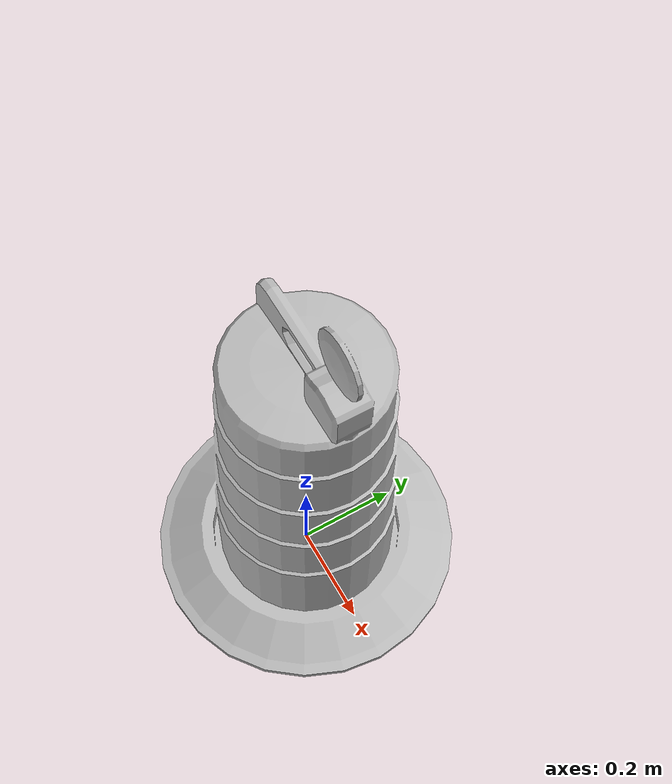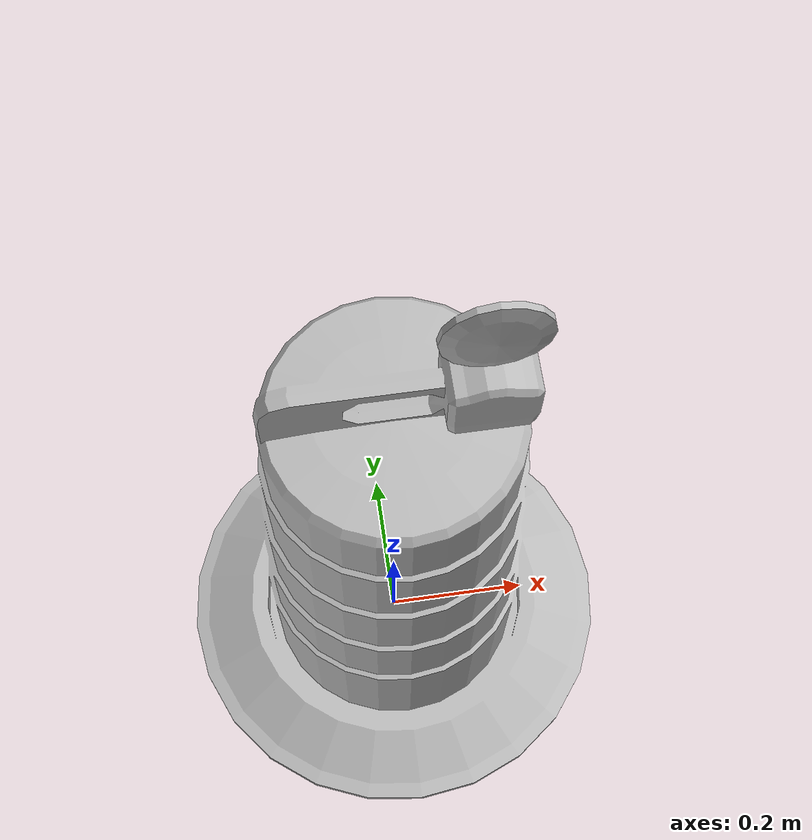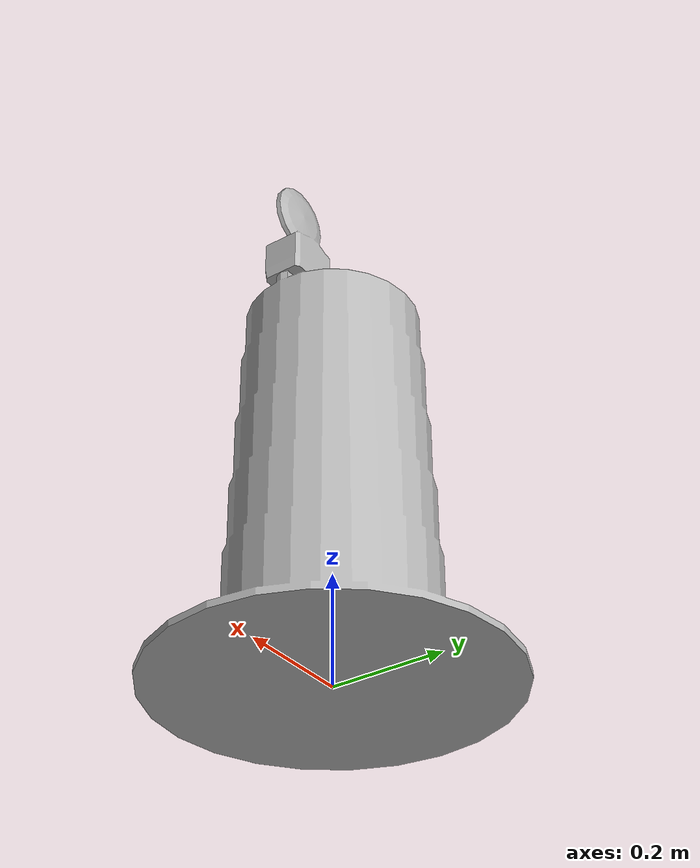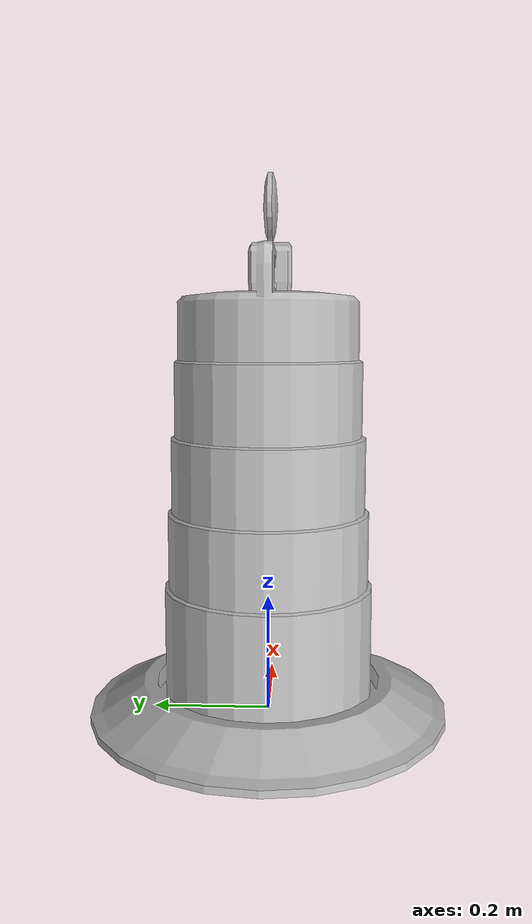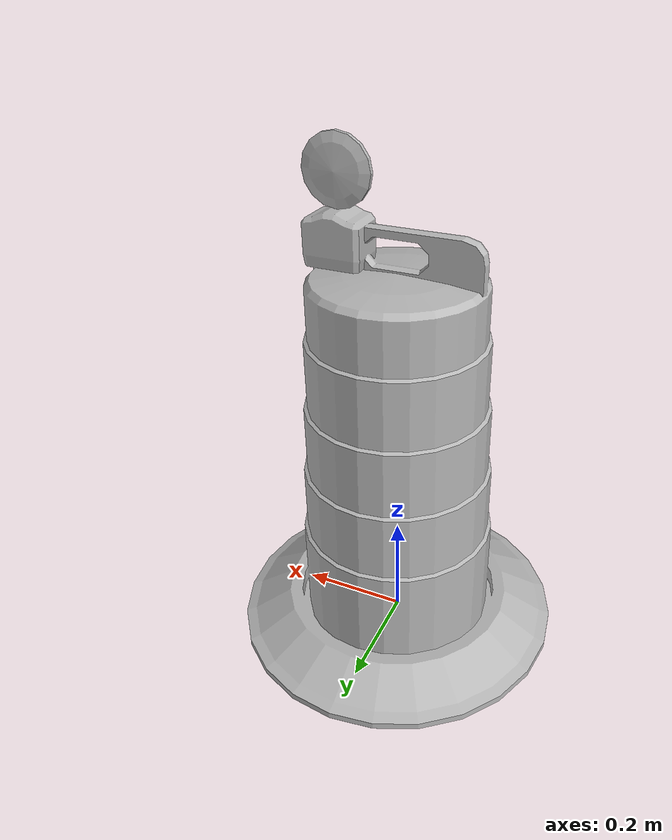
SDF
<?xml version="1.0" ?>
<sdf version="1.5">
  <model name="Construction Barrel Resized">
    <link name="link">
      <inertial>
        <pose>0 0 0.4 0 0 0</pose>
        <mass>500</mass>
        <inertia>
          <ixx>51.2096</ixx>
          <iyy>51.2096</iyy>
          <izz>25</izz>
          <ixy>0</ixy>
          <ixz>0</ixz>
        </inertia>
      </inertial>
      <collision name="collision">
        <geometry>
          <mesh>
            <scale>0.6 0.6 0.6</scale>
            <uri>model://construction_barrel/meshes/construction_barrel.dae</uri>
          </mesh>
        </geometry>
      </collision>
      <visual name="visual">
        <geometry>
          <mesh>
            <scale>0.6 0.6 0.6</scale>
            <uri>model://construction_barrel/meshes/construction_barrel.dae</uri>
          </mesh>
        </geometry>
      </visual>
    </link>
  </model>
</sdf>
